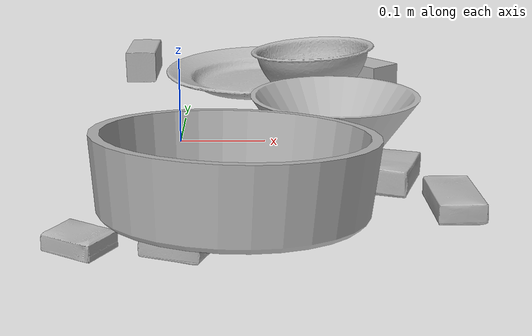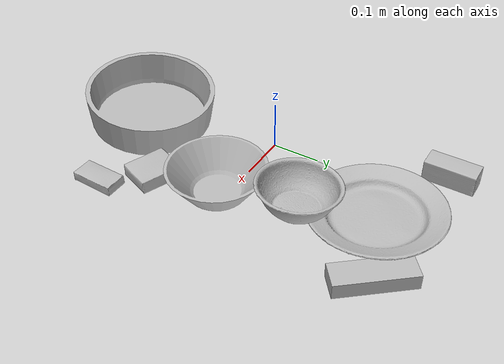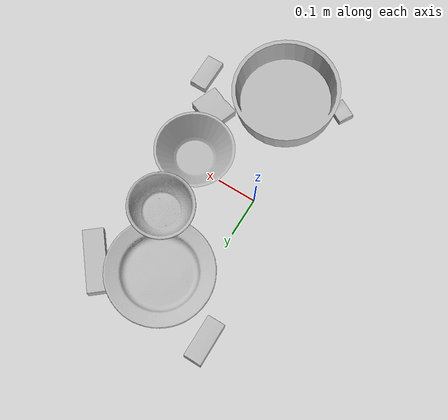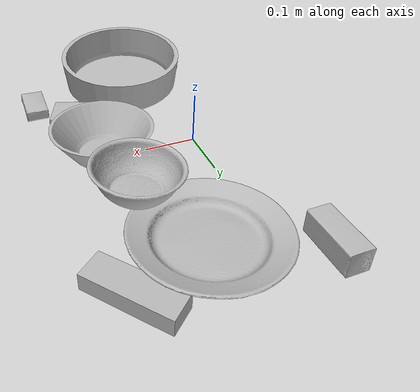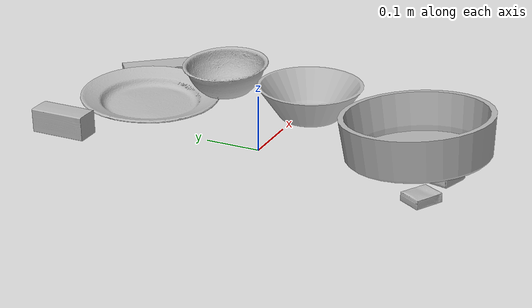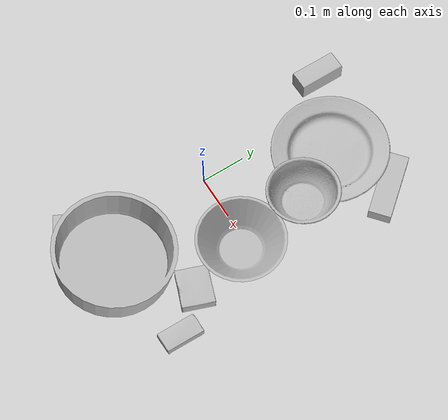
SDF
<sdf version="1.4">
  <world name="default">
    <light name="light1" type="point">
      <pose>0 0 1 0 0 0</pose>
      <diffuse>3 3 3 1</diffuse>
      <specular>3 3 3 1</specular>
    </light>
    <light name="light2" type="point">
      <pose>0 0.5 2 0 0 0</pose>
      <diffuse>1 1 1 1</diffuse>
      <specular>1 1 1 1</specular>
    </light>
    <light name="light3" type="point">
      <pose>0 0.5 2 0 0 0</pose>
      <diffuse>3 3 3 1</diffuse>
      <specular>3 3 3 1</specular>
    </light>
    <scene>
      <ambient>0.7 0.7 0.7</ambient>
    </scene>
    <model name="box1">
      <link name="link_box1">
        <collision name="default">
          <geometry>
            <mesh>
              <uri>model://jenga/collision_meshes/collision.obj</uri>
              <scale>1.0 1.0 1.0</scale>
            </mesh>
          </geometry>
          <surface>
            <friction>
              <ode>
                <mu>0.5</mu>
                <mu2>0.5</mu2>
              </ode>
            </friction>
          <contact>
        <ode>
            <max_vel>0</max_vel>
            <min_depth>0.0001</min_depth>
            <kp>1e8</kp>
        </ode>
    </contact></surface>
        </collision>
        <visual name="default">
          <geometry>
            <mesh>
              <uri>model://jenga/visual_meshes/visual.dae</uri>
              <scale>1.0 1.0 1.0</scale>
            </mesh>
          </geometry>
        </visual>
        <inertial>
          <mass>0.24226053059101105</mass>
          <pose>-2.502855807051674e-07 -0.0001025000965455547 -4.092339804628864e-05 0.0 -7.34215461761844e-07 0.0</pose>
          <inertia>
            <ixx>6.703936e-05</ixx>
            <iyy>0.0004542569</iyy>
            <izz>0.00048495785</izz>
            <ixy>0</ixy>
            <ixz>0</ixz>
            <iyz>0</iyz>
          </inertia>
        </inertial>
      </link>
      <pose>0.2329103648662567 0.32574817538261414 0.015000032261013985 -2.1243369881522314e-06 -2.406012657791998e-07 2.2632939164202863</pose>
    </model>
    <model name="box11">
      <link name="link_box11">
        <collision name="default">
          <geometry>
            <mesh>
              <uri>model://sugar_box/collision_meshes/collision.obj</uri>
              <scale>0.5 0.5 0.5</scale>
            </mesh>
          </geometry>
          <surface>
            <friction>
              <ode>
                <mu>0.5</mu>
                <mu2>0.5</mu2>
              </ode>
            </friction>
          <contact>
        <ode>
            <max_vel>0</max_vel>
            <min_depth>0.0001</min_depth>
            <kp>1e8</kp>
        </ode>
    </contact></surface>
        </collision>
        <visual name="default">
          <geometry>
            <mesh>
              <uri>model://sugar_box/visual_meshes/visual.dae</uri>
              <scale>0.5 0.5 0.5</scale>
            </mesh>
          </geometry>
        </visual>
        <inertial>
          <mass>0.06204606965184212</mass>
          <pose>0.0005171863595023751 1.9245549992774613e-05 -0.00018182402709499002 -0.0004046263588767038 0.0010506634057764815 0.0026153785560837986</pose>
          <inertia>
            <ixx>1.2924152e-05</ixx>
            <iyy>4.1773517e-05</iyy>
            <izz>5.0007893e-05</izz>
            <ixy>0</ixy>
            <ixz>0</ixz>
            <iyz>0</iyz>
          </inertia>
        </inertial>
      </link>
      <pose>0.2767527997493744 -0.22829733788967133 0.011399307288229465 0.0007748895372680521 -0.023432772205894778 -1.5767065735074115</pose>
    </model>
    <model name="box2">
      <link name="link_box2">
        <collision name="default">
          <geometry>
            <mesh>
              <uri>model://gelatin_box/collision_meshes/collision.obj</uri>
              <scale>1.0 1.0 1.0</scale>
            </mesh>
          </geometry>
          <surface>
            <friction>
              <ode>
                <mu>0.5</mu>
                <mu2>0.5</mu2>
              </ode>
            </friction>
          <contact>
        <ode>
            <max_vel>0</max_vel>
            <min_depth>0.0001</min_depth>
            <kp>1e8</kp>
        </ode>
    </contact></surface>
        </collision>
        <visual name="default">
          <geometry>
            <mesh>
              <uri>model://gelatin_box/visual_meshes/visual.dae</uri>
              <scale>1.0 1.0 1.0</scale>
            </mesh>
          </geometry>
        </visual>
        <inertial>
          <mass>0.13706544041633606</mass>
          <pose>0.000431961816502735 0.00011156871187267825 -0.0003640321083366871 -0.0010503719975702072 -0.0047558196187974565 0.01644056506069309</pose>
          <inertia>
            <ixx>9.675702e-05</ixx>
            <iyy>6.911303e-05</iyy>
            <izz>0.00014728573</izz>
            <ixy>0</ixy>
            <ixz>0</ixz>
            <iyz>0</iyz>
          </inertia>
        </inertial>
      </link>
      <pose>0.20748867094516754 -0.1506737768650055 0.015168312005698681 0.005597501966305729 -0.007304605546116837 -1.9331696683693016</pose>
    </model>
    <model name="box21">
      <link name="link_box21">
        <collision name="default">
          <geometry>
            <mesh>
              <uri>model://pudding_box/collision_meshes/collision.obj</uri>
              <scale>0.5 0.5 0.5</scale>
            </mesh>
          </geometry>
          <surface>
            <friction>
              <ode>
                <mu>0.5</mu>
                <mu2>0.5</mu2>
              </ode>
            </friction>
          <contact>
        <ode>
            <max_vel>0</max_vel>
            <min_depth>0.0001</min_depth>
            <kp>1e8</kp>
        </ode>
    </contact></surface>
        </collision>
        <visual name="default">
          <geometry>
            <mesh>
              <uri>model://pudding_box/visual_meshes/visual.dae</uri>
              <scale>0.5 0.5 0.5</scale>
            </mesh>
          </geometry>
        </visual>
        <inertial>
          <mass>0.041178666055202484</mass>
          <pose>0.00024474109522998333 0.00040339428232982755 -0.00025944141088984907 0.005213101335872514 -0.006603799630434185 0.020079819569992066</pose>
          <inertia>
            <ixx>1.163759e-05</ixx>
            <iyy>7.8298535e-06</iyy>
            <izz>1.7185945e-05</izz>
            <ixy>0</ixy>
            <ixz>0</ixz>
            <iyz>0</iyz>
          </inertia>
        </inertial>
      </link>
      <pose>0.019475771114230156 -0.3274097740650177 0.010845587588846684 -0.02481868637324454 -0.043081510988782545 -1.896920482455338</pose>
    </model>
    <model name="box3">
      <link name="link_box3">
        <collision name="default">
          <geometry>
            <mesh>
              <uri>model://cracker_box/collision_meshes/collision.obj</uri>
              <scale>0.25 0.25 0.25</scale>
            </mesh>
          </geometry>
          <surface>
            <friction>
              <ode>
                <mu>0.5</mu>
                <mu2>0.5</mu2>
              </ode>
            </friction>
          <contact>
        <ode>
            <max_vel>0</max_vel>
            <min_depth>0.0001</min_depth>
            <kp>1e8</kp>
        </ode>
    </contact></surface>
        </collision>
        <visual name="default">
          <geometry>
            <mesh>
              <uri>model://cracker_box/visual_meshes/visual.dae</uri>
              <scale>0.25 0.25 0.25</scale>
            </mesh>
          </geometry>
        </visual>
        <inertial>
          <mass>0.02017100155353546</mass>
          <pose>0.00023660367878619581 6.358561222441494e-05 -0.00042573839891701937 -0.0003162077973682912 -0.011106487737506417 0.0025467945369474112</pose>
          <inertia>
            <ixx>3.2066264e-06</ixx>
            <iyy>5.2947703e-06</iyy>
            <izz>7.556123e-06</izz>
            <ixy>0</ixy>
            <ixz>0</ixz>
            <iyz>0</iyz>
          </inertia>
        </inertial>
      </link>
      <pose>-0.06653206795454025 -0.31584787368774414 0.009120449423789978 -0.011787914300875684 -0.007367179166588153 2.617086125555835</pose>
    </model>
    <model name="box31">
      <link name="link_box31">
        <collision name="default">
          <geometry>
            <mesh>
              <uri>model://wood_block/collision_meshes/collision.obj</uri>
              <scale>0.5 0.5 0.5</scale>
            </mesh>
          </geometry>
          <surface>
            <friction>
              <ode>
                <mu>0.5</mu>
                <mu2>0.5</mu2>
              </ode>
            </friction>
          <contact>
        <ode>
            <max_vel>0</max_vel>
            <min_depth>0.0001</min_depth>
            <kp>1e8</kp>
        </ode>
    </contact></surface>
        </collision>
        <visual name="default">
          <geometry>
            <mesh>
              <uri>model://wood_block/visual_meshes/visual.dae</uri>
              <scale>0.5 0.5 0.5</scale>
            </mesh>
          </geometry>
        </visual>
        <inertial>
          <mass>0.1962708830833435</mass>
          <pose>-2.9066577553749084e-06 -0.000285404734313488 0.00013204291462898254 -0.05220969561834339 -0.0051926963065425085 -0.006861379449261536</pose>
          <inertia>
            <ixx>6.566003e-05</ixx>
            <iyy>0.00020742005</iyy>
            <izz>0.00020664421</izz>
            <ixy>0</ixy>
            <ixz>0</ixz>
            <iyz>0</iyz>
          </inertia>
        </inertial>
      </link>
      <pose>-0.07787495851516724 0.3482951521873474 0.022629264742136 -0.005208520276454817 0.005718784928545812 1.5745684565559122</pose>
    </model>
    <model name="plate1">
      <link name="link_plate1">
        <collision name="default">
          <geometry>
            <mesh>
              <uri>model://plate/collision_meshes/collision.obj</uri>
              <scale>1.0 1.0 1.0</scale>
            </mesh>
          </geometry>
          <surface>
            <friction>
              <ode>
                <mu>0.5</mu>
                <mu2>0.5</mu2>
              </ode>
            </friction>
          <contact>
        <ode>
            <max_vel>0</max_vel>
            <min_depth>0.0001</min_depth>
            <kp>1e8</kp>
        </ode>
    </contact></surface>
        </collision>
        <visual name="default">
          <geometry>
            <mesh>
              <uri>model://plate/visual_meshes/visual.dae</uri>
              <scale>1.0 1.0 1.0</scale>
            </mesh>
          </geometry>
        </visual>
        <inertial>
          <mass>0.17345036566257477</mass>
          <pose>-0.0006044625188224018 0.00027825802681036294 -0.0010561991948634386 0.0022187574415082918 -0.0032254973035065115 0.4526175972404713</pose>
          <inertia>
            <ixx>0.00081140426</ixx>
            <iyy>0.0008036436</iyy>
            <izz>0.0015869853</izz>
            <ixy>0</ixy>
            <ixz>0</ixz>
            <iyz>0</iyz>
          </inertia>
        </inertial>
      </link>
      <pose>0.09307226538658142 0.26897796988487244 0.01708453707396984 -0.0144789405820992 0.042869533045664744 -2.4245131477509383</pose>
    </model>
    <model name="bowl1">
      <link name="link_bowl1">
        <collision name="default">
          <geometry>
            <mesh>
              <uri>model://bowl/collision_meshes/collision.obj</uri>
              <scale>1.0 1.0 1.0</scale>
            </mesh>
          </geometry>
          <surface>
            <friction>
              <ode>
                <mu>0.5</mu>
                <mu2>0.5</mu2>
              </ode>
            </friction>
          <contact>
        <ode>
            <max_vel>0</max_vel>
            <min_depth>0.0001</min_depth>
            <kp>1e8</kp>
        </ode>
    </contact></surface>
        </collision>
        <visual name="default">
          <geometry>
            <mesh>
              <uri>model://bowl/visual_meshes/visual.dae</uri>
              <scale>1.0 1.0 1.0</scale>
            </mesh>
          </geometry>
        </visual>
        <inertial>
          <mass>0.11633910983800888</mass>
          <pose>0.00020445004338398576 -0.0010302083101123571 -0.0008042659610509872 -0.01576420252076368 0.01454664289610389 0.7140315541596068</pose>
          <inertia>
            <ixx>0.0002672402</ixx>
            <iyy>0.000261269</iyy>
            <izz>0.00044958986</izz>
            <ixy>0</ixy>
            <ixz>0</ixz>
            <iyz>0</iyz>
          </inertia>
        </inertial>
      </link>
      <pose>0.16662587225437164 0.14679239690303802 0.05595008656382561 -0.05599631391104204 0.031546142890461315 1.7138181267454102</pose>
    </model>
    <model name="plate2">
      <link name="link_plate2">
        <collision name="default">
          <geometry>
            <mesh>
              <uri>model://pan_tefal/collision_meshes/collision.obj</uri>
              <scale>1.0 1.0 1.0</scale>
            </mesh>
          </geometry>
          <surface>
            <friction>
              <ode>
                <mu>0.5</mu>
                <mu2>0.5</mu2>
              </ode>
            </friction>
          <contact>
        <ode>
            <max_vel>0</max_vel>
            <min_depth>0.0001</min_depth>
            <kp>1e8</kp>
        </ode>
    </contact></surface>
        </collision>
        <visual name="default">
          <geometry>
            <mesh>
              <uri>model://pan_tefal/visual_meshes/visual.dae</uri>
              <scale>1.0 1.0 1.0</scale>
            </mesh>
          </geometry>
        </visual>
        <inertial>
          <mass>0.6251956820487976</mass>
          <pose>-0.00018002417345996946 3.279016891610809e-05 -0.00851493515074253 0.0008190253681579672 -0.00033013925853852665 -0.331857454583129</pose>
          <inertia>
            <ixx>0.004315697</ixx>
            <iyy>0.00434352</iyy>
            <izz>0.007944365</izz>
            <ixy>0</ixy>
            <ixz>0</ixz>
            <iyz>0</iyz>
          </inertia>
        </inertial>
      </link>
      <pose>0.06773839145898819 -0.26251667737960815 0.05054230988025665 2.9020657723022923e-05 -0.10724165836315845 -1.8723475361613462</pose>
    </model>
    <model name="bowl2">
      <link name="link_bowl2">
        <collision name="default">
          <geometry>
            <mesh>
              <uri>model://bowl_a/collision_meshes/collision.obj</uri>
              <scale>1.0 1.0 1.0</scale>
            </mesh>
          </geometry>
          <surface>
            <friction>
              <ode>
                <mu>0.5</mu>
                <mu2>0.5</mu2>
              </ode>
            </friction>
          <contact>
        <ode>
            <max_vel>0</max_vel>
            <min_depth>0.0001</min_depth>
            <kp>1e8</kp>
        </ode>
    </contact></surface>
        </collision>
        <visual name="default">
          <geometry>
            <mesh>
              <uri>model://bowl_a/visual_meshes/visual.dae</uri>
              <scale>1.0 1.0 1.0</scale>
            </mesh>
          </geometry>
        </visual>
        <inertial>
          <mass>0.3434441387653351</mass>
          <pose>0.0002786742115858942 4.731103399535641e-05 -0.0013765294570475817 -0.000980532155977885 -0.0010938290454026757 -0.191241060811112</pose>
          <inertia>
            <ixx>0.0009778013</ixx>
            <iyy>0.0009838042</iyy>
            <izz>0.0017390571</izz>
            <ixy>0</ixy>
            <ixz>0</ixz>
            <iyz>0</iyz>
          </inertia>
        </inertial>
      </link>
      <pose>0.18043647706508636 -0.01877339743077755 0.030383072793483734 -1.4535613637002937e-06 3.981803021481234e-07 -2.4168455383625584</pose>
    </model>
  <physics type="ode">
      <max_contacts>50</max_contacts>
      <ode>
        <solver>
          <type>quick</type>
          <iters>75</iters>
        </solver>
        <constraints>
          <contact_max_correcting_vel>0</contact_max_correcting_vel>
          <contact_surface_layer>0</contact_surface_layer>
        </constraints>
      </ode>
    </physics></world>
</sdf>
